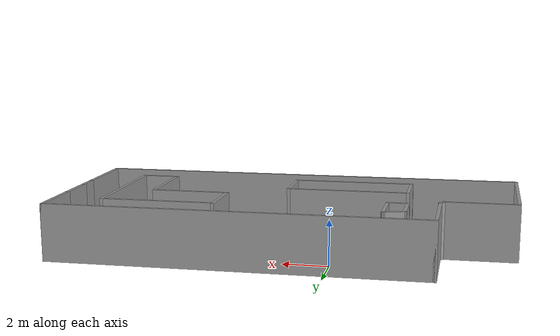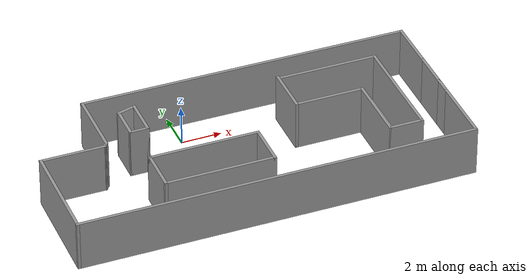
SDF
<?xml version='1.0'?>
<sdf version='1.7'>
  <model name='obstacles.world'>
    <pose>2.14 -2.895 0 0 -0 0</pose>
    <link name='Wall_0'>
      <collision name='Wall_0_Collision'>
        <geometry>
          <box>
            <size>3.5 0.15 2.5</size>
          </box>
        </geometry>
        <pose>0 0 1.25 0 -0 0</pose>
      </collision>
      <visual name='Wall_0_Visual'>
        <pose>0 0 1.25 0 -0 0</pose>
        <geometry>
          <box>
            <size>3.5 0.15 2.5</size>
          </box>
        </geometry>
        <material>
          <script>
            <uri>file://media/materials/scripts/gazebo.material</uri>
            <name>Gazebo/Grey</name>
          </script>
          <ambient>1 1 1 1</ambient>
        </material>
        <meta>
          <layer>0</layer>
        </meta>
      </visual>
      <pose>-6.55 2.65 0 0 -0 1.5708</pose>
    </link>
    <link name='Wall_1'>
      <collision name='Wall_1_Collision'>
        <geometry>
          <box>
            <size>16.5 0.15 2.5</size>
          </box>
        </geometry>
        <pose>0 0 1.25 0 -0 0</pose>
      </collision>
      <visual name='Wall_1_Visual'>
        <pose>0 0 1.25 0 -0 0</pose>
        <geometry>
          <box>
            <size>16.5 0.15 2.5</size>
          </box>
        </geometry>
        <material>
          <script>
            <uri>file://media/materials/scripts/gazebo.material</uri>
            <name>Gazebo/Grey</name>
          </script>
          <ambient>1 1 1 1</ambient>
        </material>
        <meta>
          <layer>0</layer>
        </meta>
      </visual>
      <pose>1.625 4.325 0 0 -0 0</pose>
    </link>
    <link name='Wall_10'>
      <collision name='Wall_10_Collision'>
        <geometry>
          <box>
            <size>0.4 0.15 2.5</size>
          </box>
        </geometry>
        <pose>0 0 1.25 0 -0 0</pose>
      </collision>
      <visual name='Wall_10_Visual'>
        <pose>0 0 1.25 0 -0 0</pose>
        <geometry>
          <box>
            <size>0.4 0.15 2.5</size>
          </box>
        </geometry>
        <material>
          <script>
            <uri>file://media/materials/scripts/gazebo.material</uri>
            <name>Gazebo/Grey</name>
          </script>
          <ambient>1 1 1 1</ambient>
        </material>
        <meta>
          <layer>0</layer>
        </meta>
      </visual>
      <pose>-6.625 0.875 0 0 -0 0.927295</pose>
    </link>
    <link name='Wall_12'>
      <collision name='Wall_12_Collision'>
        <geometry>
          <box>
            <size>5.5 0.15 2.5</size>
          </box>
        </geometry>
        <pose>0 0 1.25 0 -0 0</pose>
      </collision>
      <visual name='Wall_12_Visual'>
        <pose>0 0 1.25 0 -0 0</pose>
        <geometry>
          <box>
            <size>5.5 0.15 2.5</size>
          </box>
        </geometry>
        <material>
          <script>
            <uri>file://media/materials/scripts/gazebo.material</uri>
            <name>Gazebo/Grey</name>
          </script>
          <ambient>1 1 1 1</ambient>
        </material>
        <meta>
          <layer>0</layer>
        </meta>
      </visual>
      <pose>-2.37896 -0.808032 0 0 -0 0</pose>
    </link>
    <link name='Wall_13'>
      <collision name='Wall_13_Collision'>
        <geometry>
          <box>
            <size>2.25 0.15 2.5</size>
          </box>
        </geometry>
        <pose>0 0 1.25 0 -0 0</pose>
      </collision>
      <visual name='Wall_13_Visual'>
        <pose>0 0 1.25 0 -0 0</pose>
        <geometry>
          <box>
            <size>2.25 0.15 2.5</size>
          </box>
        </geometry>
        <material>
          <script>
            <uri>file://media/materials/scripts/gazebo.material</uri>
            <name>Gazebo/Grey</name>
          </script>
          <ambient>1 1 1 1</ambient>
        </material>
        <meta>
          <layer>0</layer>
        </meta>
      </visual>
      <pose>0.296042 -1.85803 0 0 -0 -1.5708</pose>
    </link>
    <link name='Wall_14'>
      <collision name='Wall_14_Collision'>
        <geometry>
          <box>
            <size>5.5 0.15 2.5</size>
          </box>
        </geometry>
        <pose>0 0 1.25 0 -0 0</pose>
      </collision>
      <visual name='Wall_14_Visual'>
        <pose>0 0 1.25 0 -0 0</pose>
        <geometry>
          <box>
            <size>5.5 0.15 2.5</size>
          </box>
        </geometry>
        <material>
          <script>
            <uri>file://media/materials/scripts/gazebo.material</uri>
            <name>Gazebo/Grey</name>
          </script>
          <ambient>1 1 1 1</ambient>
        </material>
        <meta>
          <layer>0</layer>
        </meta>
      </visual>
      <pose>-2.37896 -2.90803 0 0 -0 3.14159</pose>
    </link>
    <link name='Wall_15'>
      <collision name='Wall_15_Collision'>
        <geometry>
          <box>
            <size>2.25 0.15 2.5</size>
          </box>
        </geometry>
        <pose>0 0 1.25 0 -0 0</pose>
      </collision>
      <visual name='Wall_15_Visual'>
        <pose>0 0 1.25 0 -0 0</pose>
        <geometry>
          <box>
            <size>2.25 0.15 2.5</size>
          </box>
        </geometry>
        <material>
          <script>
            <uri>file://media/materials/scripts/gazebo.material</uri>
            <name>Gazebo/Grey</name>
          </script>
          <ambient>1 1 1 1</ambient>
        </material>
        <meta>
          <layer>0</layer>
        </meta>
      </visual>
      <pose>-5.05396 -1.85803 0 0 -0 1.5708</pose>
    </link>
    <link name='Wall_17'>
      <collision name='Wall_17_Collision'>
        <geometry>
          <box>
            <size>2.5 0.15 2.5</size>
          </box>
        </geometry>
        <pose>0 0 1.25 0 -0 0</pose>
      </collision>
      <visual name='Wall_17_Visual'>
        <pose>0 0 1.25 0 -0 0</pose>
        <geometry>
          <box>
            <size>2.5 0.15 2.5</size>
          </box>
        </geometry>
        <material>
          <script>
            <uri>file://media/materials/scripts/gazebo.material</uri>
            <name>Gazebo/Grey</name>
          </script>
          <ambient>1 1 1 1</ambient>
        </material>
        <meta>
          <layer>0</layer>
        </meta>
      </visual>
      <pose>2.80225 1.77518 0 0 -0 -1.5708</pose>
    </link>
    <link name='Wall_18'>
      <collision name='Wall_18_Collision'>
        <geometry>
          <box>
            <size>3.5 0.15 2.5</size>
          </box>
        </geometry>
        <pose>0 0 1.25 0 -0 0</pose>
      </collision>
      <visual name='Wall_18_Visual'>
        <pose>0 0 1.25 0 -0 0</pose>
        <geometry>
          <box>
            <size>3.5 0.15 2.5</size>
          </box>
        </geometry>
        <material>
          <script>
            <uri>file://media/materials/scripts/gazebo.material</uri>
            <name>Gazebo/Grey</name>
          </script>
          <ambient>1 1 1 1</ambient>
        </material>
        <meta>
          <layer>0</layer>
        </meta>
      </visual>
      <pose>4.47725 0.600182 0 0 -0 0</pose>
    </link>
    <link name='Wall_19'>
      <collision name='Wall_19_Collision'>
        <geometry>
          <box>
            <size>3.5 0.15 2.5</size>
          </box>
        </geometry>
        <pose>0 0 1.25 0 -0 0</pose>
      </collision>
      <visual name='Wall_19_Visual'>
        <pose>0 0 1.25 0 -0 0</pose>
        <geometry>
          <box>
            <size>3.5 0.15 2.5</size>
          </box>
        </geometry>
        <material>
          <script>
            <uri>file://media/materials/scripts/gazebo.material</uri>
            <name>Gazebo/Grey</name>
          </script>
          <ambient>1 1 1 1</ambient>
        </material>
        <meta>
          <layer>0</layer>
        </meta>
      </visual>
      <pose>6.15225 -1.07482 0 0 -0 -1.5708</pose>
    </link>
    <link name='Wall_2'>
      <collision name='Wall_2_Collision'>
        <geometry>
          <box>
            <size>2.75 0.15 2.5</size>
          </box>
        </geometry>
        <pose>0 0 1.25 0 -0 0</pose>
      </collision>
      <visual name='Wall_2_Visual'>
        <pose>0 0 1.25 0 -0 0</pose>
        <geometry>
          <box>
            <size>2.75 0.15 2.5</size>
          </box>
        </geometry>
        <material>
          <script>
            <uri>file://media/materials/scripts/gazebo.material</uri>
            <name>Gazebo/Grey</name>
          </script>
          <ambient>1 1 1 1</ambient>
        </material>
        <meta>
          <layer>0</layer>
        </meta>
      </visual>
      <pose>9.8 3.025 0 0 -0 -1.5708</pose>
    </link>
    <link name='Wall_20'>
      <collision name='Wall_20_Collision'>
        <geometry>
          <box>
            <size>1.75 0.15 2.5</size>
          </box>
        </geometry>
        <pose>0 0 1.25 0 -0 0</pose>
      </collision>
      <visual name='Wall_20_Visual'>
        <pose>0 0 1.25 0 -0 0</pose>
        <geometry>
          <box>
            <size>1.75 0.15 2.5</size>
          </box>
        </geometry>
        <material>
          <script>
            <uri>file://media/materials/scripts/gazebo.material</uri>
            <name>Gazebo/Grey</name>
          </script>
          <ambient>1 1 1 1</ambient>
        </material>
        <meta>
          <layer>0</layer>
        </meta>
      </visual>
      <pose>6.95225 -2.74982 0 0 -0 0</pose>
    </link>
    <link name='Wall_21'>
      <collision name='Wall_21_Collision'>
        <geometry>
          <box>
            <size>5.75 0.15 2.5</size>
          </box>
        </geometry>
        <pose>0 0 1.25 0 -0 0</pose>
      </collision>
      <visual name='Wall_21_Visual'>
        <pose>0 0 1.25 0 -0 0</pose>
        <geometry>
          <box>
            <size>5.75 0.15 2.5</size>
          </box>
        </geometry>
        <material>
          <script>
            <uri>file://media/materials/scripts/gazebo.material</uri>
            <name>Gazebo/Grey</name>
          </script>
          <ambient>1 1 1 1</ambient>
        </material>
        <meta>
          <layer>0</layer>
        </meta>
      </visual>
      <pose>7.75225 0.050182 0 0 -0 1.5708</pose>
    </link>
    <link name='Wall_22'>
      <collision name='Wall_22_Collision'>
        <geometry>
          <box>
            <size>5 0.15 2.5</size>
          </box>
        </geometry>
        <pose>0 0 1.25 0 -0 0</pose>
      </collision>
      <visual name='Wall_22_Visual'>
        <pose>0 0 1.25 0 -0 0</pose>
        <geometry>
          <box>
            <size>5 0.15 2.5</size>
          </box>
        </geometry>
        <material>
          <script>
            <uri>file://media/materials/scripts/gazebo.material</uri>
            <name>Gazebo/Grey</name>
          </script>
          <ambient>1 1 1 1</ambient>
        </material>
        <meta>
          <layer>0</layer>
        </meta>
      </visual>
      <pose>5.32725 2.85018 0 0 -0 3.14159</pose>
    </link>
    <link name='Wall_24'>
      <collision name='Wall_24_Collision'>
        <geometry>
          <box>
            <size>2 0.15 2.5</size>
          </box>
        </geometry>
        <pose>0 0 1.25 0 -0 0</pose>
      </collision>
      <visual name='Wall_24_Visual'>
        <pose>0 0 1.25 0 -0 0</pose>
        <geometry>
          <box>
            <size>2 0.15 2.5</size>
          </box>
        </geometry>
        <material>
          <script>
            <uri>file://media/materials/scripts/gazebo.material</uri>
            <name>Gazebo/Grey</name>
          </script>
          <ambient>1 1 1 1</ambient>
        </material>
        <meta>
          <layer>0</layer>
        </meta>
      </visual>
      <pose>-4.35836 2.30998 0 0 -0 -1.5708</pose>
    </link>
    <link name='Wall_25'>
      <collision name='Wall_25_Collision'>
        <geometry>
          <box>
            <size>1 0.15 2.5</size>
          </box>
        </geometry>
        <pose>0 0 1.25 0 -0 0</pose>
      </collision>
      <visual name='Wall_25_Visual'>
        <pose>0 0 1.25 0 -0 0</pose>
        <geometry>
          <box>
            <size>1 0.15 2.5</size>
          </box>
        </geometry>
        <material>
          <script>
            <uri>file://media/materials/scripts/gazebo.material</uri>
            <name>Gazebo/Grey</name>
          </script>
          <ambient>1 1 1 1</ambient>
        </material>
        <meta>
          <layer>0</layer>
        </meta>
      </visual>
      <pose>-4.78336 1.38498 0 0 -0 3.14159</pose>
    </link>
    <link name='Wall_26'>
      <collision name='Wall_26_Collision'>
        <geometry>
          <box>
            <size>1.75 0.15 2.5</size>
          </box>
        </geometry>
        <pose>0 0 1.25 0 -0 0</pose>
      </collision>
      <visual name='Wall_26_Visual'>
        <pose>0 0 1.25 0 -0 0</pose>
        <geometry>
          <box>
            <size>1.75 0.15 2.5</size>
          </box>
        </geometry>
        <material>
          <script>
            <uri>file://media/materials/scripts/gazebo.material</uri>
            <name>Gazebo/Grey</name>
          </script>
          <ambient>1 1 1 1</ambient>
        </material>
        <meta>
          <layer>0</layer>
        </meta>
      </visual>
      <pose>-5.20836 2.18498 0 0 -0 1.5708</pose>
    </link>
    <link name='Wall_27'>
      <collision name='Wall_27_Collision'>
        <geometry>
          <box>
            <size>1.036 0.15 2.5</size>
          </box>
        </geometry>
        <pose>0 0 1.25 0 -0 0</pose>
      </collision>
      <visual name='Wall_27_Visual'>
        <pose>0 0 1.25 0 -0 0</pose>
        <geometry>
          <box>
            <size>1.036 0.15 2.5</size>
          </box>
        </geometry>
        <material>
          <script>
            <uri>file://media/materials/scripts/gazebo.material</uri>
            <name>Gazebo/Grey</name>
          </script>
          <ambient>1 1 1 1</ambient>
        </material>
        <meta>
          <layer>0</layer>
        </meta>
      </visual>
      <pose>-4.78336 3.10998 0 0 -0 0.286051</pose>
    </link>
    <link name='Wall_3'>
      <collision name='Wall_3_Collision'>
        <geometry>
          <box>
            <size>2 0.15 2.5</size>
          </box>
        </geometry>
        <pose>0 0 1.25 0 -0 0</pose>
      </collision>
      <visual name='Wall_3_Visual'>
        <pose>0 0 1.25 0 -0 0</pose>
        <geometry>
          <box>
            <size>2 0.15 2.5</size>
          </box>
        </geometry>
        <material>
          <script>
            <uri>file://media/materials/scripts/gazebo.material</uri>
            <name>Gazebo/Grey</name>
          </script>
          <ambient>1 1 1 1</ambient>
        </material>
        <meta>
          <layer>0</layer>
        </meta>
      </visual>
      <pose>9.8 0.8 0 0 -0 -1.5708</pose>
    </link>
    <link name='Wall_4'>
      <collision name='Wall_4_Collision'>
        <geometry>
          <box>
            <size>1 0.15 2.5</size>
          </box>
        </geometry>
        <pose>0 0 1.25 0 -0 0</pose>
      </collision>
      <visual name='Wall_4_Visual'>
        <pose>0 0 1.25 0 -0 0</pose>
        <geometry>
          <box>
            <size>1 0.15 2.5</size>
          </box>
        </geometry>
        <material>
          <script>
            <uri>file://media/materials/scripts/gazebo.material</uri>
            <name>Gazebo/Grey</name>
          </script>
          <ambient>1 1 1 1</ambient>
        </material>
        <meta>
          <layer>0</layer>
        </meta>
      </visual>
      <pose>9.8 -0.55 0 0 -0 -1.5708</pose>
    </link>
    <link name='Wall_6'>
      <collision name='Wall_6_Collision'>
        <geometry>
          <box>
            <size>3.5 0.15 2.5</size>
          </box>
        </geometry>
        <pose>0 0 1.25 0 -0 0</pose>
      </collision>
      <visual name='Wall_6_Visual'>
        <pose>0 0 1.25 0 -0 0</pose>
        <geometry>
          <box>
            <size>3.5 0.15 2.5</size>
          </box>
        </geometry>
        <material>
          <script>
            <uri>file://media/materials/scripts/gazebo.material</uri>
            <name>Gazebo/Grey</name>
          </script>
          <ambient>1 1 1 1</ambient>
        </material>
        <meta>
          <layer>0</layer>
        </meta>
      </visual>
      <pose>9.8 -2.65 0 0 -0 -1.5708</pose>
    </link>
    <link name='Wall_7'>
      <collision name='Wall_7_Collision'>
        <geometry>
          <box>
            <size>19.75 0.15 2.5</size>
          </box>
        </geometry>
        <pose>0 0 1.25 0 -0 0</pose>
      </collision>
      <visual name='Wall_7_Visual'>
        <pose>0 0 1.25 0 -0 0</pose>
        <geometry>
          <box>
            <size>19.75 0.15 2.5</size>
          </box>
        </geometry>
        <material>
          <script>
            <uri>file://media/materials/scripts/gazebo.material</uri>
            <name>Gazebo/Grey</name>
          </script>
          <ambient>1 1 1 1</ambient>
        </material>
        <meta>
          <layer>0</layer>
        </meta>
      </visual>
      <pose>0 -4.325 0 0 -0 3.14159</pose>
    </link>
    <link name='Wall_8'>
      <collision name='Wall_8_Collision'>
        <geometry>
          <box>
            <size>5.25 0.15 2.5</size>
          </box>
        </geometry>
        <pose>0 0 1.25 0 -0 0</pose>
      </collision>
      <visual name='Wall_8_Visual'>
        <pose>0 0 1.25 0 -0 0</pose>
        <geometry>
          <box>
            <size>5.25 0.15 2.5</size>
          </box>
        </geometry>
        <material>
          <script>
            <uri>file://media/materials/scripts/gazebo.material</uri>
            <name>Gazebo/Grey</name>
          </script>
          <ambient>1 1 1 1</ambient>
        </material>
        <meta>
          <layer>0</layer>
        </meta>
      </visual>
      <pose>-9.8 -1.775 0 0 -0 1.5708</pose>
    </link>
    <link name='Wall_9'>
      <collision name='Wall_9_Collision'>
        <geometry>
          <box>
            <size>3.25 0.15 2.5</size>
          </box>
        </geometry>
        <pose>0 0 1.25 0 -0 0</pose>
      </collision>
      <visual name='Wall_9_Visual'>
        <pose>0 0 1.25 0 -0 0</pose>
        <geometry>
          <box>
            <size>3.25 0.15 2.5</size>
          </box>
        </geometry>
        <material>
          <script>
            <uri>file://media/materials/scripts/gazebo.material</uri>
            <name>Gazebo/Grey</name>
          </script>
          <ambient>1 1 1 1</ambient>
        </material>
        <meta>
          <layer>0</layer>
        </meta>
      </visual>
      <pose>-8.25 0.775 0 0 -0 0</pose>
    </link>
    <static>1</static>
  </model>
</sdf>
